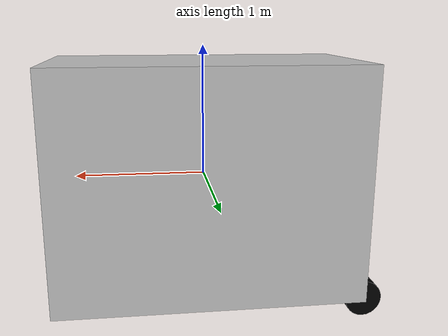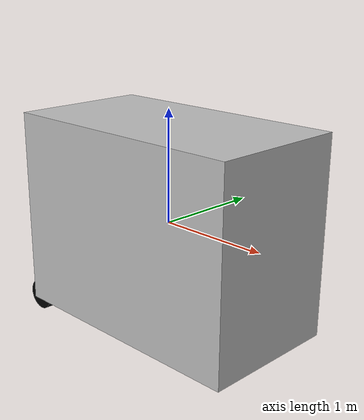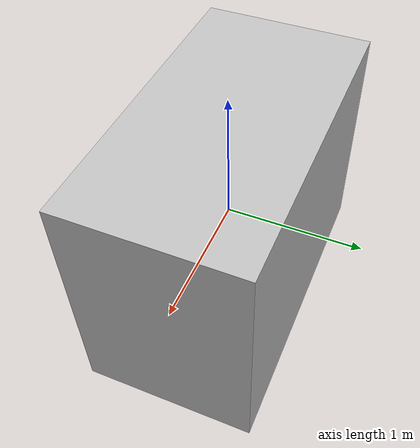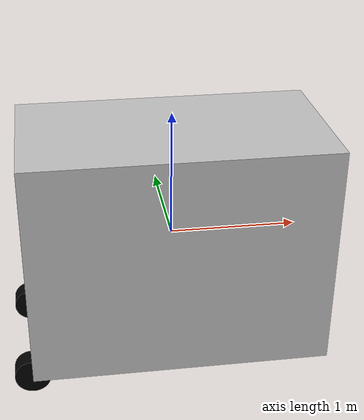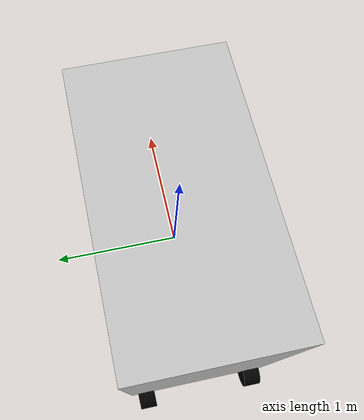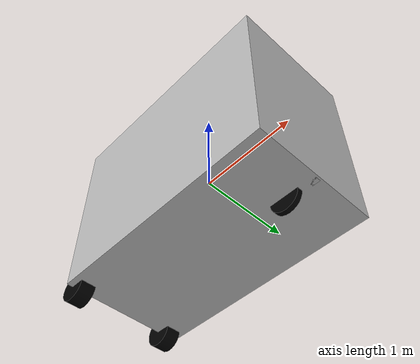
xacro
<?xml version="1.0"?>
<robot xmlns:xacro="http://www.ros.org/wiki/xacro" name="tortoisebot">
  <link name="base_link">
    <visual>
      <geometry>
        <box size="2.337 1.27 1.778"/>
      </geometry>
      <material name="silver">
        <color rgba="0.75 0.75 0.75 1"/>
      </material>
    </visual>
    <collision>
      <geometry>
        <box size="2.337 1.27 1.778"/>
      </geometry>
    </collision>
    <inertial>
      <origin xyz="0 0 -1.6" rpy="0 0 0"/>
      <mass value="1.0"/>
      <inertia ixx="0.136" iyy="0.456" izz="0.587"
               ixy="0" ixz="0" iyz="0"/>
    </inertial>
  </link>

  <joint name="front_caster_joint" type="continuous">
    <axis xyz="0 0 1"/>
    <parent link="base_link"/>
    <child link="front_caster"/>
    <origin rpy="0 0 0" xyz="1.1 0 -0.739"/>
  </joint>

  <link name="front_caster">
    <visual>
      <geometry>
        <box size="0.1 0.1 0.3"/>
      </geometry>
      <material name="silver"/>
    </visual>
    <collision>
      <geometry>
        <box size="0.1 0.1 0.3"/>
      </geometry>
    </collision>
    <inertial>
      <mass value="0.1"/>
      <inertia ixx="0.00083" iyy="0.00083" izz="0.000167"
               ixy="0" ixz="0" iyz="0"/>
    </inertial>
  </link>

  <joint name="caster_to_caster_rod" type="fixed">
    <parent link="front_caster"/>
    <child link="front_caster_rod"/>
    <origin xyz="-.3 0 0"/>
  </joint>

  <link name="front_caster_rod">
    <visual>
      <geometry>
        <box size="0.3 0.1 0.1"/>
      </geometry>
      <material name="silver"/>
    </visual>
    <inertial>
      <mass value="0.1"/>
      <inertia ixx="0.000167" iyy="0.00083" izz="0.00083"
               ixy="0" ixz="0" iyz="0"/>
    </inertial>
  </link>

  <joint name="front_wheel_joint" type="continuous">
    <axis xyz="0 0 1"/>
    <parent link="front_caster_rod"/>
    <child link="front_wheel"/>
    <origin rpy="-1.5708 0 0" xyz="0.05 0 -.15"/>
  </joint>

  <link name="front_wheel">
    <visual>
      <geometry>
        <cylinder length=".05" radius="0.14"/>
      </geometry>
      <material name="black"/>
    </visual>
    <collision>
      <geometry>
        <cylinder length=".05" radius="0.14"/>
      </geometry>
      <surface>
        <friction>
          <ode>
            <mu>0.1</mu>
            <mu2>0.1</mu2>
          </ode>
        </friction>
      </surface>
    </collision>
    <inertial>
      <mass value="0.1"/>
      <inertia ixx="5.1458e-5" iyy="5.1458e-5" izz="6.125e-5"
               ixy="0" ixz="0" iyz="0"/>
    </inertial>
  </link>

  <link name="right_wheel">
    <visual>
      <geometry>
        <cylinder length="0.15" radius="0.14"/>
      </geometry>
      <material name="black">
        <color rgba="0 0 0 1"/>
      </material>
    </visual>
    <collision>
      <geometry>
        <cylinder length="0.15" radius="0.14"/>
      </geometry>
        <friction>
          <ode>
            <mu>1.00</mu>
            <mu2>1.00</mu2>
          </ode>
        </friction>
    </collision>
    <inertial>
      <mass value="0.1"/>
      <inertia ixx="5.1458e-5" iyy="5.1458e-5" izz="6.125e-5"
               ixy="0" ixz="0" iyz="0"/>
    </inertial>
  </link>
  <joint name="right_wheel_joint" type="continuous">
    <axis xyz="0 0 1"/>
    <parent link="base_link"/>
    <child link="right_wheel"/>
    <origin rpy="-1.5708 0 0" xyz="-1.1685 -0.5 -0.889"/>
  </joint>

  <link name="left_wheel">
    <visual>
      <geometry>
        <cylinder length="0.15" radius="0.14"/>
      </geometry>
      <material name="black"/>
    </visual>
    <collision>
      <geometry>
        <cylinder length="0.15" radius="0.14"/>
      </geometry>
        <friction>
          <ode>
            <mu>1.00</mu>
            <mu2>1.00</mu2>
          </ode>
        </friction>
    </collision>
    <inertial>
      <mass value="0.1"/>
      <inertia ixx="5.1458e-5" iyy="5.1458e-5" izz="6.125e-5"
               ixy="0" ixz="0" iyz="0"/>
    </inertial>
  </link>
  <joint name="left_wheel_joint" type="continuous">
    <axis xyz="0 0 1"/>
    <parent link="base_link"/>
    <child link="left_wheel"/>
    <origin rpy="-1.5708 0 0" xyz="-1.1685 0.5 -0.889"/>
  </joint>

  <gazebo>
    <plugin name="differential_drive_controller"
            filename="libgazebo_ros_diff_drive.so">
      <leftJoint>left_wheel_joint</leftJoint>
      <rightJoint>right_wheel_joint</rightJoint>
      <robotBaseFrame>base_link</robotBaseFrame>
      <wheelSeparation>1.0</wheelSeparation>
      <wheelDiameter>0.28</wheelDiameter>
       <wheelTorque>1.0</wheelTorque>
       <publishWheelJointState>true</publishWheelJointState>
       <legacyMode>false</legacyMode>
    </plugin>
  </gazebo>

  <gazebo>
    <plugin name="joint_state_publisher"
            filename="libgazebo_ros_joint_state_publisher.so">
      <jointName>front_caster_joint, front_wheel_joint</jointName>
    </plugin>
  </gazebo>

</robot>
